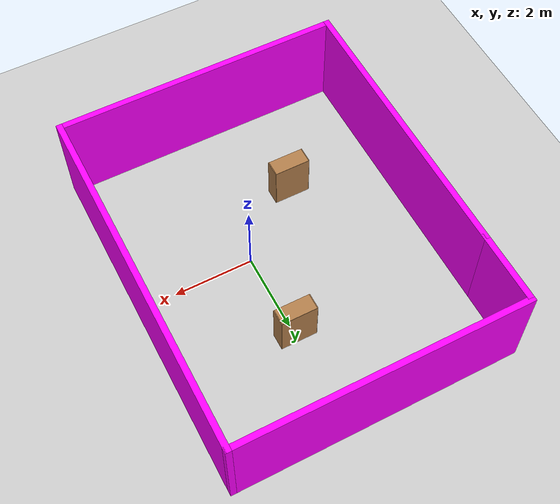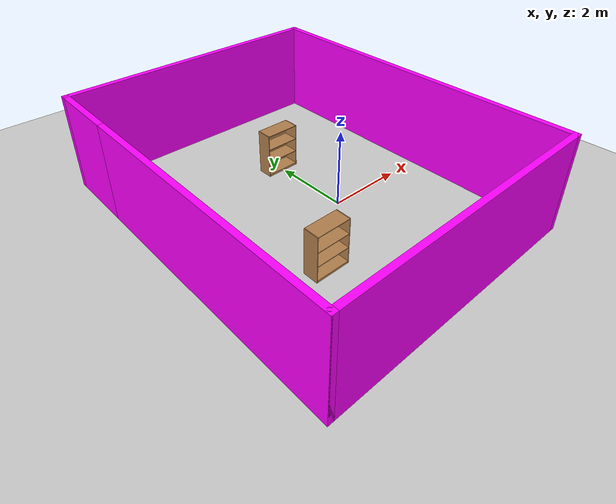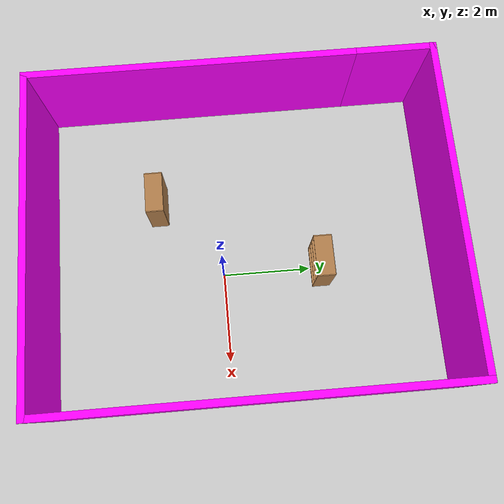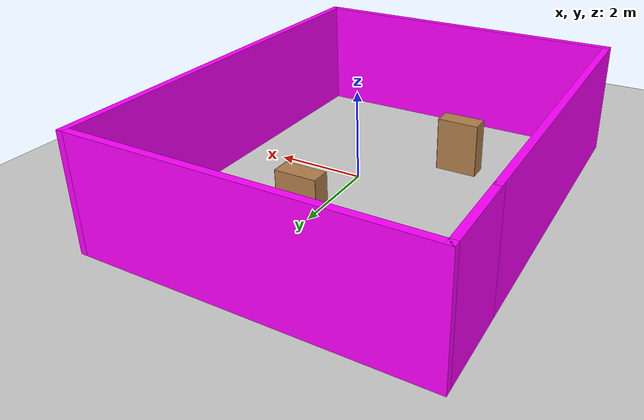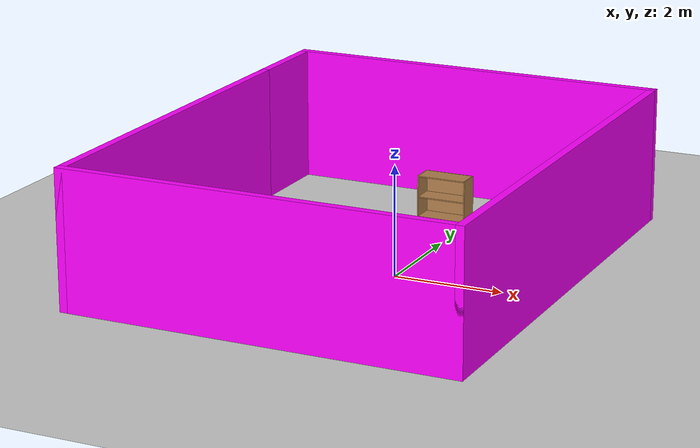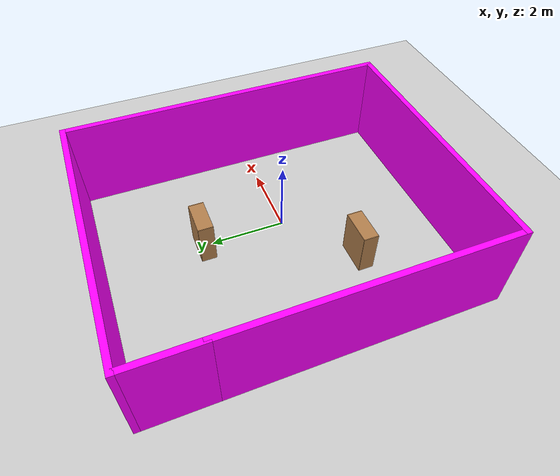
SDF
<sdf version="1.6">
 <world name="default">
  <light name="sun" type="directional">
   <pose>0 0 10 0 -0 0</pose>
   <diffuse>0.8 0.8 0.8 1</diffuse>
   <specular>0.1 0.1 0.1 1</specular>
   <attenuation>
    <range>1000</range>
    <constant>0.9</constant>
    <linear>0.01</linear>
    <quadratic>0.001</quadratic>
   </attenuation>
   <direction>-0.5 0.5 -1</direction>
  </light>
  <model name="ground_plane">
   <static>1</static>
   <link name="link">
    <collision name="collision">
     <geometry><plane><normal>0 0 1</normal><size>100 100</size></plane></geometry>
     <surface><friction><ode><mu>100</mu><mu2>50</mu2></ode></friction></surface>
    </collision>
    <visual name="visual">
     <cast_shadows>0</cast_shadows>
     <geometry><plane><normal>0 0 1</normal><size>100 100</size></plane></geometry>
     <material>
      <script><uri>file://media/materials/scripts/gazebo.material</uri><name>Gazebo/Grey</name></script>
     </material>
    </visual>
   </link>
  </model>
  <gravity>0 0 -9.8</gravity>
  <magnetic_field>6e-06 2.3e-05 -4.2e-05</magnetic_field>
  <atmosphere type="adiabatic"/>
  <physics name="default_physics" default="0" type="ode">
   <max_step_size>0.001</max_step_size>
   <real_time_factor>1</real_time_factor>
   <real_time_update_rate>1000</real_time_update_rate>
  </physics>
  <scene><ambient>0.4 0.4 0.4 1</ambient><background>0.7 0.7 0.7 1</background><shadows>1</shadows></scene>
  <spherical_coordinates>
   <surface_model>EARTH_WGS84</surface_model>
   <latitude_deg>0</latitude_deg>
   <longitude_deg>0</longitude_deg>
   <elevation>0</elevation>
   <heading_deg>0</heading_deg>
  </spherical_coordinates>
  <model name="Untitled">
   <pose>-0.632071 0.487995 0 0 -0 0</pose>
   <link name="Wall_5">
    <collision name="Wall_5_Collision">
     <geometry><box><size>7.25 0.15 2.5</size></box></geometry>
     <pose>0 0 1.25 0 -0 0</pose>
    </collision>
    <visual name="Wall_5_Visual">
     <pose>0 0 1.25 0 -0 0</pose>
     <geometry><box><size>7.25 0.15 2.5</size></box></geometry>
     <material>
      <script><uri>file://media/materials/scripts/gazebo.material</uri><name>Gazebo/Grey</name></script>
      <ambient>1 0 1 1</ambient>
     </material>
    </visual>
    <pose>-3.55 -0.875 0 0 0 -1.5708</pose>
   </link>
   <link name="Wall_6">
    <collision name="Wall_6_Collision">
     <geometry><box><size>7.25 0.15 2.5</size></box></geometry>
     <pose>0 0 1.25 0 -0 0</pose>
    </collision>
    <visual name="Wall_6_Visual">
     <pose>0 0 1.25 0 -0 0</pose>
     <geometry><box><size>7.25 0.15 2.5</size></box></geometry>
     <material>
      <script><uri>file://media/materials/scripts/gazebo.material</uri><name>Gazebo/Grey</name></script>
      <ambient>1 0 1 1</ambient>
     </material>
    </visual>
    <pose>0 -4.425 0 0 -0 0</pose>
   </link>
   <link name="Wall_7">
    <collision name="Wall_7_Collision">
     <geometry><box><size>9 0.15 2.5</size></box></geometry>
     <pose>0 0 1.25 0 -0 0</pose>
    </collision>
    <visual name="Wall_7_Visual">
     <pose>0 0 1.25 0 -0 0</pose>
     <geometry><box><size>9 0.15 2.5</size></box></geometry>
     <material>
      <script><uri>file://media/materials/scripts/gazebo.material</uri><name>Gazebo/Grey</name></script>
      <ambient>1 0 1 1</ambient>
     </material>
    </visual>
    <pose>3.55 0 0 0 -0 1.5708</pose>
   </link>
   <link name="Wall_8">
    <collision name="Wall_8_Collision">
     <geometry><box><size>7.25 0.15 2.5</size></box></geometry>
     <pose>0 0 1.25 0 -0 0</pose>
    </collision>
    <visual name="Wall_8_Visual">
     <pose>0 0 1.25 0 -0 0</pose>
     <geometry><box><size>7.25 0.15 2.5</size></box></geometry>
     <material>
      <script><uri>file://media/materials/scripts/gazebo.material</uri><name>Gazebo/Grey</name></script>
      <ambient>1 0 1 1</ambient>
     </material>
    </visual>
    <pose>0 4.425 0 0 -0 3.14159</pose>
   </link>
   <link name="Wall_9">
    <collision name="Wall_9_Collision">
     <geometry><box><size>1.9 0.15 2.5</size></box></geometry>
     <pose>0 0 1.25 0 -0 0</pose>
    </collision>
    <visual name="Wall_9_Visual">
     <pose>0 0 1.25 0 -0 0</pose>
     <geometry><box><size>1.9 0.15 2.5</size></box></geometry>
     <material>
      <script><uri>file://media/materials/scripts/gazebo.material</uri><name>Gazebo/Grey</name></script>
      <ambient>1 0 1 1</ambient>
     </material>
    </visual>
    <pose>-3.55 3.55 0 0 0 -1.5708</pose>
   </link>
   <static>1</static>
  </model>
  <model name="bookshelf">
   <static>1</static>
   <link name="link">
    <inertial><mass>1</mass></inertial>
    <collision name="back">
     <pose>0 0.005 0.6 0 -0 0</pose>
     <geometry><box><size>0.9 0.01 1.2</size></box></geometry>
    </collision>
    <visual name="visual1">
     <pose>0 0.005 0.6 0 -0 0</pose>
     <geometry><box><size>0.9 0.01 1.2</size></box></geometry>
     <material>
      <script><uri>file://media/materials/scripts/gazebo.material</uri><name>Gazebo/Wood</name></script>
     </material>
    </visual>
    <collision name="left_side">
     <pose>0.45 -0.195 0.6 0 -0 0</pose>
     <geometry><box><size>0.02 0.4 1.2</size></box></geometry>
    </collision>
    <visual name="visual2">
     <pose>0.45 -0.195 0.6 0 -0 0</pose>
     <geometry><box><size>0.02 0.4 1.2</size></box></geometry>
     <material>
      <script><uri>file://media/materials/scripts/gazebo.material</uri><name>Gazebo/Wood</name></script>
     </material>
    </visual>
    <collision name="right_side">
     <pose>-0.45 -0.195 0.6 0 -0 0</pose>
     <geometry><box><size>0.02 0.4 1.2</size></box></geometry>
    </collision>
    <visual name="visual3">
     <pose>-0.45 -0.195 0.6 0 -0 0</pose>
     <geometry><box><size>0.02 0.4 1.2</size></box></geometry>
     <material>
      <script><uri>file://media/materials/scripts/gazebo.material</uri><name>Gazebo/Wood</name></script>
     </material>
    </visual>
    <collision name="bottom">
     <pose>0 -0.195 0.03 0 -0 0</pose>
     <geometry><box><size>0.88 0.4 0.06</size></box></geometry>
    </collision>
    <visual name="visual4">
     <pose>0 -0.195 0.03 0 -0 0</pose>
     <geometry><box><size>0.88 0.4 0.06</size></box></geometry>
     <material>
      <script><uri>file://media/materials/scripts/gazebo.material</uri><name>Gazebo/Wood</name></script>
     </material>
    </visual>
    <collision name="top">
     <pose>0 -0.195 1.19 0 -0 0</pose>
     <geometry><box><size>0.88 0.4 0.02</size></box></geometry>
    </collision>
    <visual name="visual5">
     <pose>0 -0.195 1.19 0 -0 0</pose>
     <geometry><box><size>0.88 0.4 0.02</size></box></geometry>
     <material>
      <script><uri>file://media/materials/scripts/gazebo.material</uri><name>Gazebo/Wood</name></script>
     </material>
    </visual>
    <collision name="low_shelf">
     <pose>0 -0.195 0.43 0 -0 0</pose>
     <geometry><box><size>0.88 0.4 0.02</size></box></geometry>
    </collision>
    <visual name="visual6">
     <pose>0 -0.195 0.43 0 -0 0</pose>
     <geometry><box><size>0.88 0.4 0.02</size></box></geometry>
     <material>
      <script><uri>file://media/materials/scripts/gazebo.material</uri><name>Gazebo/Wood</name></script>
     </material>
    </visual>
    <collision name="high_shelf">
     <pose>0 -0.195 0.8 0 -0 0</pose>
     <geometry><box><size>0.88 0.4 0.02</size></box></geometry>
    </collision>
    <visual name="visual7">
     <pose>0 -0.195 0.8 0 -0 0</pose>
     <geometry><box><size>0.88 0.4 0.02</size></box></geometry>
     <material>
      <script><uri>file://media/materials/scripts/gazebo.material</uri><name>Gazebo/Wood</name></script>
     </material>
    </visual>
   </link>
   <pose>-0.026538 2.42359 0 0 -0 0</pose>
  </model>
  <model name="bookshelf_0">
   <static>1</static>
   <link name="link">
    <inertial><mass>1</mass></inertial>
    <collision name="back">
     <pose>0 0.005 0.6 0 -0 0</pose>
     <geometry><box><size>0.9 0.01 1.2</size></box></geometry>
    </collision>
    <visual name="visual1">
     <pose>0 0.005 0.6 0 -0 0</pose>
     <geometry><box><size>0.9 0.01 1.2</size></box></geometry>
     <material>
      <script><uri>file://media/materials/scripts/gazebo.material</uri><name>Gazebo/Wood</name></script>
     </material>
    </visual>
    <collision name="left_side">
     <pose>0.45 -0.195 0.6 0 -0 0</pose>
     <geometry><box><size>0.02 0.4 1.2</size></box></geometry>
    </collision>
    <visual name="visual2">
     <pose>0.45 -0.195 0.6 0 -0 0</pose>
     <geometry><box><size>0.02 0.4 1.2</size></box></geometry>
     <material>
      <script><uri>file://media/materials/scripts/gazebo.material</uri><name>Gazebo/Wood</name></script>
     </material>
    </visual>
    <collision name="right_side">
     <pose>-0.45 -0.195 0.6 0 -0 0</pose>
     <geometry><box><size>0.02 0.4 1.2</size></box></geometry>
    </collision>
    <visual name="visual3">
     <pose>-0.45 -0.195 0.6 0 -0 0</pose>
     <geometry><box><size>0.02 0.4 1.2</size></box></geometry>
     <material>
      <script><uri>file://media/materials/scripts/gazebo.material</uri><name>Gazebo/Wood</name></script>
     </material>
    </visual>
    <collision name="bottom">
     <pose>0 -0.195 0.03 0 -0 0</pose>
     <geometry><box><size>0.88 0.4 0.06</size></box></geometry>
    </collision>
    <visual name="visual4">
     <pose>0 -0.195 0.03 0 -0 0</pose>
     <geometry><box><size>0.88 0.4 0.06</size></box></geometry>
     <material>
      <script><uri>file://media/materials/scripts/gazebo.material</uri><name>Gazebo/Wood</name></script>
     </material>
    </visual>
    <collision name="top">
     <pose>0 -0.195 1.19 0 -0 0</pose>
     <geometry><box><size>0.88 0.4 0.02</size></box></geometry>
    </collision>
    <visual name="visual5">
     <pose>0 -0.195 1.19 0 -0 0</pose>
     <geometry><box><size>0.88 0.4 0.02</size></box></geometry>
     <material>
      <script><uri>file://media/materials/scripts/gazebo.material</uri><name>Gazebo/Wood</name></script>
     </material>
    </visual>
    <collision name="low_shelf">
     <pose>0 -0.195 0.43 0 -0 0</pose>
     <geometry><box><size>0.88 0.4 0.02</size></box></geometry>
    </collision>
    <visual name="visual6">
     <pose>0 -0.195 0.43 0 -0 0</pose>
     <geometry><box><size>0.88 0.4 0.02</size></box></geometry>
     <material>
      <script><uri>file://media/materials/scripts/gazebo.material</uri><name>Gazebo/Wood</name></script>
     </material>
    </visual>
    <collision name="high_shelf">
     <pose>0 -0.195 0.8 0 -0 0</pose>
     <geometry><box><size>0.88 0.4 0.02</size></box></geometry>
    </collision>
    <visual name="visual7">
     <pose>0 -0.195 0.8 0 -0 0</pose>
     <geometry><box><size>0.88 0.4 0.02</size></box></geometry>
     <material>
      <script><uri>file://media/materials/scripts/gazebo.material</uri><name>Gazebo/Wood</name></script>
     </material>
    </visual>
   </link>
   <pose>-1.78211 -1.2378 0 0 -0 0</pose>
  </model>
 </world>
</sdf>
